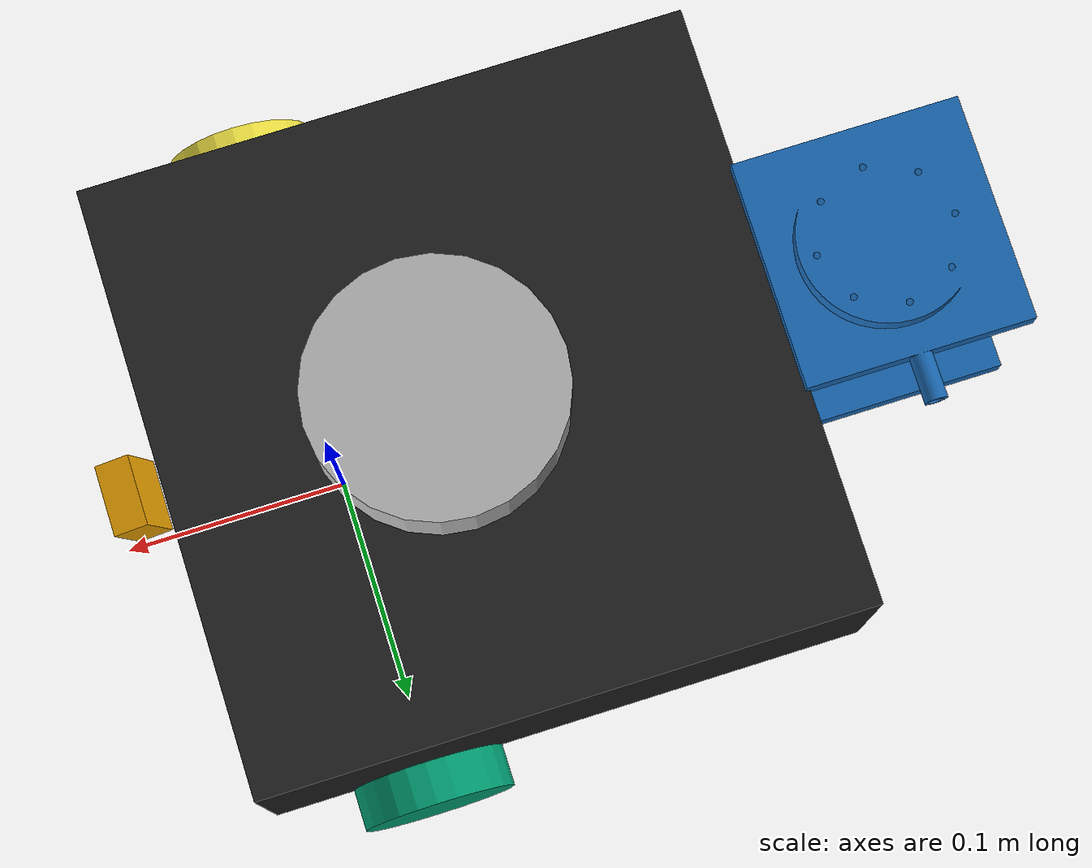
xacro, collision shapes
<?xml version="1.0"?>
<robot xmlns:xacro="http://www.ros.org/wiki/xacro" name="hose_plate_waffle_combined">
  <!-- TurtleBot3 Waffle 로드 -->
  <xacro:include filename="./turtlebot3_waffle_pi.urdf.xacro"/>

  <!-- hose_plate 정의 -->
  <material name="hose_plate_light_black">
    <color rgba="0.1 0.4118 0.7059 1.0"/>
  </material>

    <!-- TurtleBot3와 hose_plate 연결 -->
  <joint name="hose_to_waffle_joint" type="fixed">
    <parent link="base_link"/> <!-- TurtleBot3의 base_link -->
    <child link="hose_plate_base_link"/> <!-- hose_plate의 base_footprint -->
    <origin rpy="0 0 0" xyz="-0.295 0.040 0"/> <!-- 위치 조정 -->
  </joint>

  <link name="hose_plate_base_link">
    <visual>
      <origin rpy="1.57 0 0" xyz="0 0 0"/>
      <geometry>
        <mesh filename="package://week5_model/mesh/hose/Base2.stl" scale="0.001 0.001 0.001"/>
      </geometry>
      <material name="hose_plate_light_black"/>
    </visual>
    <collision>
      <origin rpy="1.57 0 0" xyz="0 0 0"/>
      <geometry>
        <mesh filename="package://week5_model/mesh/hose/Base2.stl" scale="0.001 0.001 0.001"/>
      </geometry>
    </collision>
  </link>

  <joint name="top_joint" type="prismatic">
    <parent link="hose_plate_base_link"/>
    <child link="top_link"/>
    <origin rpy="0 0 0" xyz="0 -0.1 0.02"/>
    <axis xyz="0 0 1"/> <!-- z축 방향으로 선형 이동 -->
    <limit lower="0.0" upper="0.07" effort="50.0" velocity="0.035"/>
  </joint>

  <link name="top_link">
    <visual>
      <origin rpy="1.57 0 1.57" xyz="0 0 0"/>
      <geometry>
        <mesh filename="package://week5_model/mesh/hose/Top2.stl" scale="0.001 0.001 0.001"/>
      </geometry>
      <material name="hose_plate_light_black"/>
    </visual>
    <collision>
      <origin rpy="1.57 0 1.57" xyz="0 0 0"/>
      <geometry>
        <mesh filename="package://week5_model/mesh/hose/Top2.stl" scale="0.001 0.001 0.001"/>
      </geometry>
    </collision>
  </link>
    <!-- Transmission 설정 -->
  <transmission name="top_joint_trans">
    <type>transmission_interface/SimpleTransmission</type>
    <joint name="top_joint">
      <hardwareInterface>EffortJointInterface</hardwareInterface>
    </joint>
    <actuator name="motor_top">
      <hardwareInterface>EffortJointInterface</hardwareInterface>
      <mechanicalReduction>1</mechanicalReduction>
    </actuator>
  </transmission>

</robot>

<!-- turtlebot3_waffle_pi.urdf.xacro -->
<robot name="turtlebot3_waffle_pi" xmlns:xacro="http://ros.org/wiki/xacro">
  <xacro:include filename="$(find turtlebot3_description)/urdf/common_properties.xacro"/>
  <xacro:include filename="$(find turtlebot3_description)/urdf/turtlebot3_waffle_pi.gazebo.xacro"/>

  <link name="base_footprint"/>

  <joint name="base_joint" type="fixed">
    <parent link="base_footprint"/>
    <child link="base_link" />
    <origin xyz="0 0 0.010" rpy="0 0 0"/>
  </joint>

  <link name="base_link">
    <visual>
      <origin xyz="-0.064 0 0.0" rpy="0 0 0"/>
      <geometry>
        <mesh filename="package://turtlebot3_description/meshes/bases/waffle_pi_base.stl" scale="0.001 0.001 0.001"/>
      </geometry>
      <material name="light_black"/>
    </visual>

    <collision>
      <origin xyz="-0.064 0 0.047" rpy="0 0 0"/>
      <geometry>
        <box size="0.266 0.266 0.094"/>
      </geometry>
    </collision>

    <inertial>
      <origin xyz="0 0 0" rpy="0 0 0"/>
      <mass value="1.3729096e+00"/>
      <inertia ixx="8.7002718e-03" ixy="-4.7576583e-05" ixz="1.1160499e-04"
               iyy="8.6195418e-03" iyz="-3.5422299e-06"
               izz="1.4612727e-02" />
    </inertial>
  </link>

  <joint name="wheel_left_joint" type="continuous">
    <parent link="base_link"/>
    <child link="wheel_left_link"/>
    <origin xyz="0.0 0.144 0.023" rpy="-1.57 0 0"/>
    <axis xyz="0 0 1"/>
  </joint>

  <link name="wheel_left_link">
    <visual>
      <origin xyz="0 0 0" rpy="1.57 0 0"/>
      <geometry>
        <mesh filename="package://turtlebot3_description/meshes/wheels/left_tire.stl" scale="0.001 0.001 0.001"/>
      </geometry>
      <material name="dark"/>
    </visual>

    <collision>
      <origin xyz="0 0 0" rpy="0 0 0"/>
      <geometry>
        <cylinder length="0.018" radius="0.033"/>
      </geometry>
    </collision>

    <inertial>
      <origin xyz="0 0 0" />
      <mass value="2.8498940e-02" />
      <inertia ixx="1.1175580e-05" ixy="-4.2369783e-11" ixz="-5.9381719e-09"
               iyy="1.1192413e-05" iyz="-1.4400107e-11"
               izz="2.0712558e-05" />
      </inertial>
  </link>

  <joint name="wheel_right_joint" type="continuous">
    <parent link="base_link"/>
    <child link="wheel_right_link"/>
    <origin xyz="0.0 -0.144 0.023" rpy="-1.57 0 0"/>
    <axis xyz="0 0 1"/>
  </joint>

  <link name="wheel_right_link">
    <visual>
      <origin xyz="0 0 0" rpy="1.57 0 0"/>
      <geometry>
        <mesh filename="package://turtlebot3_description/meshes/wheels/right_tire.stl" scale="0.001 0.001 0.001"/>
      </geometry>
      <material name="dark"/>
    </visual>

    <collision>
      <origin xyz="0 0 0" rpy="0 0 0"/>
      <geometry>
        <cylinder length="0.018" radius="0.033"/>
      </geometry>
    </collision>

    <inertial>
      <origin xyz="0 0 0" />
      <mass value="2.8498940e-02" />
      <inertia ixx="1.1175580e-05" ixy="-4.2369783e-11" ixz="-5.9381719e-09"
               iyy="1.1192413e-05" iyz="-1.4400107e-11"
               izz="2.0712558e-05" />
      </inertial>
  </link>

  <joint name="caster_back_right_joint" type="fixed">
    <parent link="base_link"/>
    <child link="caster_back_right_link"/>
    <origin xyz="-0.177 -0.064 -0.004" rpy="-1.57 0 0"/>
  </joint>

  <link name="caster_back_right_link">
    <collision>
      <origin xyz="0 0.001 0" rpy="0 0 0"/>
      <geometry>
        <box size="0.030 0.009 0.020"/>
      </geometry>
    </collision>

    <inertial>
      <origin xyz="0 0 0" />
      <mass value="0.005" />
      <inertia ixx="0.001" ixy="0.0" ixz="0.0"
               iyy="0.001" iyz="0.0"
               izz="0.001" />
    </inertial>
  </link>

  <joint name="caster_back_left_joint" type="fixed">
    <parent link="base_link"/>
    <child link="caster_back_left_link"/>
    <origin xyz="-0.177 0.064 -0.004" rpy="-1.57 0 0"/>
  </joint>

  <link name="caster_back_left_link">
    <collision>
      <origin xyz="0 0.001 0" rpy="0 0 0"/>
      <geometry>
        <box size="0.030 0.009 0.020"/>
      </geometry>
    </collision>

    <inertial>
      <origin xyz="0 0 0" />
      <mass value="0.005" />
      <inertia ixx="0.001" ixy="0.0" ixz="0.0"
               iyy="0.001" iyz="0.0"
               izz="0.001" />
    </inertial>
  </link>

  <joint name="imu_joint" type="fixed">
    <parent link="base_link"/>
    <child link="imu_link"/>
    <origin xyz="0.0 0 0.068" rpy="0 0 0"/>
  </joint>

  <link name="imu_link"/>

  <joint name="scan_joint" type="fixed">
    <parent link="base_link"/>
    <child link="base_scan"/>
    <origin xyz="-0.064 0 0.122" rpy="0 0 0"/>
  </joint>

  <link name="base_scan">
    <visual>
      <origin xyz="0 0 0.0" rpy="0 0 0"/>
      <geometry>
        <mesh filename="package://turtlebot3_description/meshes/sensors/lds.stl" scale="0.001 0.001 0.001"/>
      </geometry>
      <material name="dark"/>
    </visual>

    <collision>
      <origin xyz="0.015 0 -0.0065" rpy="0 0 0"/>
      <geometry>
        <cylinder length="0.0315" radius="0.055"/>
      </geometry>
    </collision>

    <inertial>
      <mass value="0.114" />
      <origin xyz="0 0 0" />
      <inertia ixx="0.001" ixy="0.0" ixz="0.0"
               iyy="0.001" iyz="0.0"
               izz="0.001" />
    </inertial>
  </link>

  <joint name="camera_joint" type="fixed">
    <origin xyz="0.073 -0.011 0.084" rpy="0 0.26197 0"/>
    <parent link="base_link"/>
    <child link="camera_link"/>
  </joint>

  <link name="camera_link">
    <collision>
      <origin xyz="0.005 0.011 0.013" rpy="0 0 0"/>
      <geometry>
        <box size="0.015 0.030 0.027"/>
      </geometry>
    </collision>
  </link>

  <joint name="camera_rgb_joint" type="fixed">
    <origin xyz="0.003 0.011 0.009" rpy="0 0 0"/>
    <parent link="camera_link"/>
    <child link="camera_rgb_frame"/>
  </joint>
  <link name="camera_rgb_frame"/>

  <joint name="camera_rgb_optical_joint" type="fixed">
    <origin xyz="0 0 0" rpy="-1.57 -1 -1.57"/>
    <parent link="camera_rgb_frame"/>
    <child link="camera_rgb_optical_frame"/>
  </joint>
  <link name="camera_rgb_optical_frame"/>

</robot>
